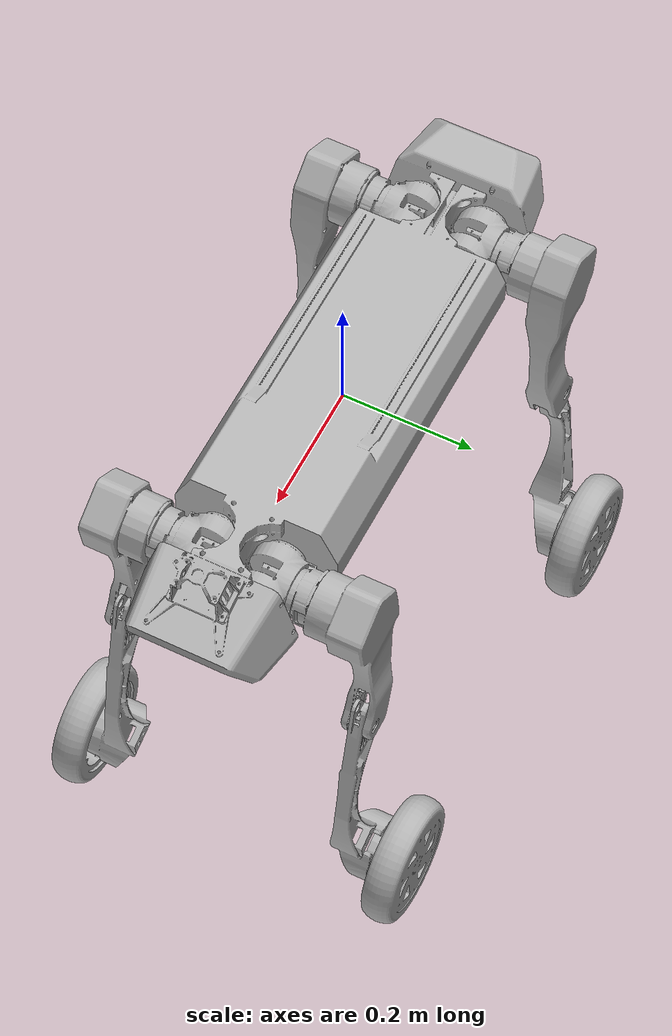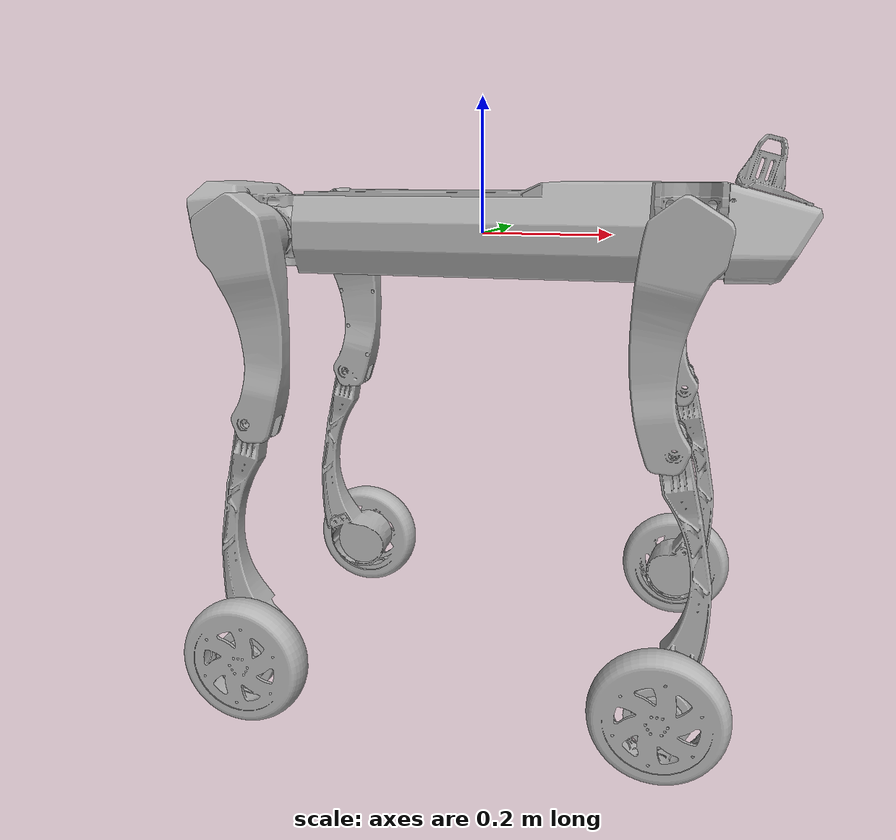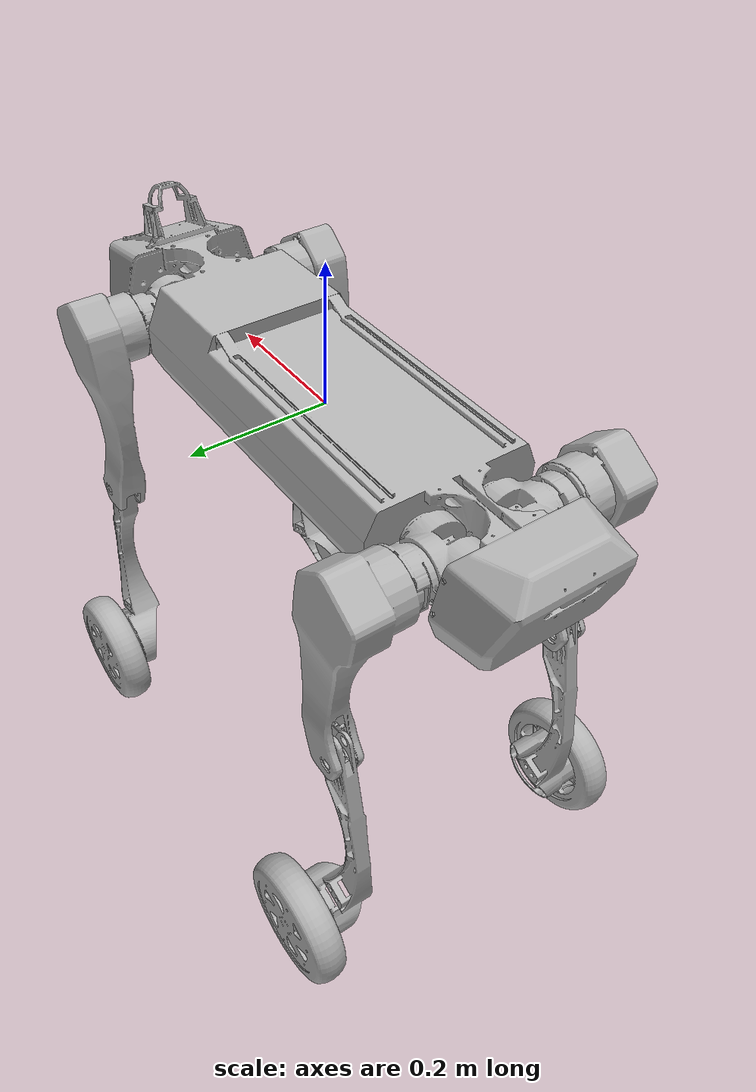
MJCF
<mujoco model="ly-mid-w-0915B">
  <compiler angle="radian" meshdir="meshes"/>

  <option iterations="50" timestep="0.002" solver="PGS" gravity="0 0 -9.81" />

  <default>
    <joint damping="0.2" armature="0.01" frictionloss="0.01" />
  </default>

  <asset>
    <mesh name="base_link" content_type="model/stl" file="base_link.STL"/>
    <mesh name="LF_ABAD_Link" content_type="model/stl" file="LF_ABAD_Link.STL"/>
    <mesh name="LF_THIGH_Link" content_type="model/stl" file="LF_THIGH_Link.STL"/>
    <mesh name="LF_SHANK_Link" content_type="model/stl" file="LF_SHANK_Link.STL"/>
    <mesh name="LF_FOOT_Link" content_type="model/stl" file="LF_FOOT_Link.STL"/>
    <mesh name="RF_ABAD_Link" content_type="model/stl" file="RF_ABAD_Link.STL"/>
    <mesh name="RF_THIGH_Link" content_type="model/stl" file="RF_THIGH_Link.STL"/>
    <mesh name="RF_SHANK_Link" content_type="model/stl" file="RF_SHANK_Link.STL"/>
    <mesh name="RF_FOOT_Link" content_type="model/stl" file="RF_FOOT_Link.STL"/>
    <mesh name="LH_ABAD_Link" content_type="model/stl" file="LH_ABAD_Link.STL"/>
    <mesh name="LH_THIGH_Link" content_type="model/stl" file="LH_THIGH_Link.STL"/>
    <mesh name="LH_SHANK_Link" content_type="model/stl" file="LH_SHANK_Link.STL"/>
    <mesh name="LH_FOOT_Link" content_type="model/stl" file="LH_FOOT_Link.STL"/>
    <mesh name="RH_ABAD_Link" content_type="model/stl" file="RH_ABAD_Link.STL"/>
    <mesh name="RH_THIGH_Link" content_type="model/stl" file="RH_THIGH_Link.STL"/>
    <mesh name="RH_SHANK_Link" content_type="model/stl" file="RH_SHANK_Link.STL"/>
    <mesh name="RH_FOOT_Link" content_type="model/stl" file="RH_FOOT_Link.STL"/>
  </asset>

  <worldbody>
    <light pos="0 0 1.5" dir="0 0 -1" directional="true"/>
    <body name="base">
      <inertial pos="0.00771202 -2.38069e-06 0.00294617" quat="1.00163e-05 0.70184 1.85912e-05 0.712335" mass="21.5552" diaginertia="0.962219 0.890231 0.122532"/>
      <joint name="floating_base_joint" type="free"/>
      <geom type="mesh" contype="0" conaffinity="0" group="1" density="0" rgba="0.698039 0.698039 0.698039 1" mesh="base_link"/>
      <geom type="mesh" rgba="0.698039 0.698039 0.698039 1" mesh="base_link"/>
      <geom size="0.0005 0.0005 0.0005" pos="0.0043 -0.02 0.0414" type="box" contype="0" conaffinity="0" group="1" density="0"/>
      <geom size="0.0005 0.0005 0.0005" pos="0.0043 -0.02 0.0414" type="box"/>
      <body name="LF_hip" pos="0.3154 0.05 0">
        <inertial pos="-1.38221e-06 0.0119998 -3.78509e-06" quat="-0.000589927 0.707109 -0.000527551 0.707104" mass="0.778654" diaginertia="0.00121131 0.000960298 0.00087971"/>
        <joint name="LF_HAA" pos="0 0 0" axis="1 0 0" range="-1.57 1.57" actuatorfrcrange="-40 40"/>
        <geom type="mesh" contype="0" conaffinity="0" group="1" density="0" rgba="0.698039 0.698039 0.698039 1" mesh="LF_ABAD_Link"/>
        <body name="LF_thigh" pos="0 0.1388 0">
          <inertial pos="-0.00412085 -0.0352419 -0.029079" quat="0.875057 0.115204 -0.00185057 0.470105" mass="2.10667" diaginertia="0.0136968 0.013538 0.00268849"/>
          <joint name="LF_HFE" pos="0 0 0" axis="0 1 0" range="-1.04 4.18" actuatorfrcrange="-40 40"/>
          <geom type="mesh" contype="0" conaffinity="0" group="1" density="0" rgba="0.698039 0.698039 0.698039 1" mesh="LF_THIGH_Link"/>
          <body name="LF_calf" pos="0 0 -0.272">
            <inertial pos="0.00690866 0.0384609 -0.310503" quat="0.84516 0.0943631 -0.0225429 0.525635" mass="1.26483" diaginertia="0.0162686 0.0158352 0.00130706"/>
            <joint name="LF_KFE" pos="0 0 0" axis="0 1 0" range="-2.73 -0.74" actuatorfrcrange="-100 100"/>
            <geom type="mesh" contype="0" conaffinity="0" group="1" density="0" rgba="0.698039 0.698039 0.698039 1" mesh="LF_SHANK_Link"/>
            <geom type="mesh" rgba="0.698039 0.698039 0.698039 1" mesh="LF_SHANK_Link"/>
            <body name="LF_FOOT" pos="0 0.0889282 -0.365367" quat="1 -3.81917e-05 -5.98325e-10 1.56664e-05">
              <inertial pos="4.11893e-09 -0.016568 -6.73453e-10" quat="0.5 0.5 0.5 0.5" mass="0.750197" diaginertia="0.00508244 0.00268749 0.00268749"/>
              <joint name="LF_WHEEL" pos="0 0 0" axis="0 1 0" range="-17453.3 17453.3" actuatorfrcrange="-40 40"/>
              <geom type="mesh" contype="0" conaffinity="0" group="1" density="0" rgba="0.698039 0.698039 0.698039 1" mesh="LF_FOOT_Link"/>
              <geom type="mesh" rgba="0.698039 0.698039 0.698039 1" mesh="LF_FOOT_Link"/>
            </body>
          </body>
        </body>
      </body>
      <body name="RF_hip" pos="0.3154 -0.05 0">
        <inertial pos="-2.01943e-06 -0.0119999 -3.7868e-06" quat="0.000596564 0.707104 0.000520837 0.707109" mass="0.778648" diaginertia="0.00121131 0.000960297 0.000879709"/>
        <joint name="RF_HAA" pos="0 0 0" axis="1 0 0" range="-1.57 1.57" actuatorfrcrange="-40 40"/>
        <geom type="mesh" contype="0" conaffinity="0" group="1" density="0" rgba="0.698039 0.698039 0.698039 1" mesh="RF_ABAD_Link"/>
        <body name="RF_thigh" pos="0 -0.1388 0">
          <inertial pos="-0.00412079 0.0352397 -0.029084" quat="0.469884 -0.00183031 0.11521 0.875176" mass="2.10685" diaginertia="0.0136982 0.0135394 0.00268877"/>
          <joint name="RF_HFE" pos="0 0 0" axis="0 1 0" range="-1.04 4.18" actuatorfrcrange="-40 40"/>
          <geom type="mesh" contype="0" conaffinity="0" group="1" density="0" rgba="0.698039 0.698039 0.698039 1" mesh="RF_THIGH_Link"/>
          <body name="RF_calf" pos="0 0 -0.272">
            <inertial pos="0.00691056 -0.0384575 -0.310502" quat="0.525419 -0.0225167 0.0943718 0.845294" mass="1.26478" diaginertia="0.0162682 0.0158354 0.00130658"/>
            <joint name="RF_KFE" pos="0 0 0" axis="0 1 0" range="-2.73 -0.74" actuatorfrcrange="-100 100"/>
            <geom type="mesh" contype="0" conaffinity="0" group="1" density="0" rgba="0.698039 0.698039 0.698039 1" mesh="RF_SHANK_Link"/>
            <geom type="mesh" rgba="0.698039 0.698039 0.698039 1" mesh="RF_SHANK_Link"/>
            <body name="RF_FOOT" pos="0 -0.0889282 -0.365367" quat="1 3.81916e-05 -5.98329e-10 -1.56665e-05">
              <inertial pos="-4.11892e-09 0.016568 -6.73453e-10" quat="0.5 0.5 0.5 0.5" mass="0.750197" diaginertia="0.00508244 0.00268749 0.00268749"/>
              <joint name="RF_WHEEL" pos="0 0 0" axis="0 1 0" range="-17453.3 17453.3" actuatorfrcrange="-40 40"/>
              <geom type="mesh" contype="0" conaffinity="0" group="1" density="0" rgba="0.698039 0.698039 0.698039 1" mesh="RF_FOOT_Link"/>
              <geom type="mesh" rgba="0.698039 0.698039 0.698039 1" mesh="RF_FOOT_Link"/>
            </body>
          </body>
        </body>
      </body>
      <body name="LH_hip" pos="-0.3155 0.05 0">
        <inertial pos="-1.36846e-06 0.0119998 -3.78369e-06" quat="-0.000590709 0.707109 -0.000526824 0.707104" mass="0.778654" diaginertia="0.00121131 0.000960298 0.00087971"/>
        <joint name="LH_HAA" pos="0 0 0" axis="1 0 0" range="-1.57 1.57" actuatorfrcrange="-40 40"/>
        <geom type="mesh" contype="0" conaffinity="0" group="1" density="0" rgba="0.698039 0.698039 0.698039 1" mesh="LH_ABAD_Link"/>
        <body name="LH_thigh" pos="0 0.1388 0">
          <inertial pos="0.0041208 -0.0352397 -0.029084" quat="0.469884 0.00183043 -0.11521 0.875175" mass="2.10685" diaginertia="0.0136982 0.0135394 0.00268877"/>
          <joint name="LH_HFE" pos="0 0 0" axis="0 1 0" range="-4.18 1.04" actuatorfrcrange="-40 40"/>
          <geom type="mesh" contype="0" conaffinity="0" group="1" density="0" rgba="0.698039 0.698039 0.698039 1" mesh="LH_THIGH_Link"/>
          <body name="LH_calf" pos="0 0 -0.272">
            <inertial pos="-0.00690497 0.0384556 -0.310503" quat="0.525543 0.0225509 -0.0943693 0.845216" mass="1.26487" diaginertia="0.0162685 0.0158352 0.0013072"/>
            <joint name="LH_KFE" pos="0 0 0" axis="0 1 0" range="0.74 2.73" actuatorfrcrange="-100 100"/>
            <geom type="mesh" contype="0" conaffinity="0" group="1" density="0" rgba="0.698039 0.698039 0.698039 1" mesh="LH_SHANK_Link"/>
            <geom type="mesh" rgba="0.698039 0.698039 0.698039 1" mesh="LH_SHANK_Link"/>
            <body name="LH_FOOT" pos="0 0.0889282 -0.365367" quat="1 -3.81916e-05 5.98329e-10 -1.56665e-05">
              <inertial pos="4.11892e-09 -0.016568 -6.73454e-10" quat="0.5 0.5 0.5 0.5" mass="0.750197" diaginertia="0.00508244 0.00268749 0.00268749"/>
              <joint name="LH_WHEEL" pos="0 0 0" axis="0 1 0" range="-17453.3 17453.3" actuatorfrcrange="-40 40"/>
              <geom type="mesh" contype="0" conaffinity="0" group="1" density="0" rgba="0.698039 0.698039 0.698039 1" mesh="LH_FOOT_Link"/>
              <geom type="mesh" rgba="0.698039 0.698039 0.698039 1" mesh="LH_FOOT_Link"/>
            </body>
          </body>
        </body>
      </body>
      <body name="RH_hip" pos="-0.3155 -0.05 0">
        <inertial pos="-2.03304e-06 -0.0119999 -3.78531e-06" quat="0.000595832 0.707104 0.000521638 0.707109" mass="0.778648" diaginertia="0.00121131 0.000960297 0.000879709"/>
        <joint name="RH_HAA" pos="0 0 0" axis="1 0 0" range="-1.57 1.57" actuatorfrcrange="-40 40"/>
        <geom type="mesh" contype="0" conaffinity="0" group="1" density="0" rgba="0.698039 0.698039 0.698039 1" mesh="RH_ABAD_Link"/>
        <body name="RH_thigh" pos="0 -0.1388 0">
          <inertial pos="0.00412085 0.0352419 -0.0290789" quat="0.875062 -0.115203 0.00184915 0.470097" mass="2.10668" diaginertia="0.0136968 0.0135381 0.0026885"/>
          <joint name="RH_HFE" pos="0 0 0" axis="0 1 0" range="-4.18 1.04" actuatorfrcrange="-40 40"/>
          <geom type="mesh" contype="0" conaffinity="0" group="1" density="0" rgba="0.698039 0.698039 0.698039 1" mesh="RH_THIGH_Link"/>
          <body name="RH_calf" pos="0 0 -0.272">
            <inertial pos="-0.00690864 -0.0384609 -0.310502" quat="0.845161 -0.0943635 0.0225414 0.525633" mass="1.26483" diaginertia="0.0162686 0.0158352 0.00130705"/>
            <joint name="RH_KFE" pos="0 0 0" axis="0 1 0" range="0.74 2.73" actuatorfrcrange="-100 100"/>
            <geom type="mesh" contype="0" conaffinity="0" group="1" density="0" rgba="0.698039 0.698039 0.698039 1" mesh="RH_SHANK_Link"/>
            <geom type="mesh" rgba="0.698039 0.698039 0.698039 1" mesh="RH_SHANK_Link"/>
            <body name="RH_FOOT" pos="0 -0.0889282 -0.365367" quat="1 3.81917e-05 5.98325e-10 1.56664e-05">
              <inertial pos="-4.11893e-09 0.016568 -6.73453e-10" quat="0.5 0.5 0.5 0.5" mass="0.750197" diaginertia="0.00508244 0.00268749 0.00268749"/>
              <joint name="RH_WHEEL" pos="0 0 0" axis="0 1 0" range="-17453.3 17453.3" actuatorfrcrange="-40 40"/>
              <geom type="mesh" contype="0" conaffinity="0" group="1" density="0" rgba="0.698039 0.698039 0.698039 1" mesh="RH_FOOT_Link"/>
              <geom type="mesh" rgba="0.698039 0.698039 0.698039 1" mesh="RH_FOOT_Link"/>
            </body>
          </body>
        </body>
      </body>
    </body>
  </worldbody>

  <actuator>
    <motor name="RF_HAA" joint="RF_HAA" ctrlrange="-40 40"/>
    <motor name="RF_HFE" joint="RF_HFE" ctrlrange="-40 40"/>
    <motor name="RF_KFE" joint="RF_KFE" ctrlrange="-100 100"/>
    <motor name="RF_WHEEL" joint="RF_WHEEL" ctrlrange="-40 40"/>

    <motor name="LF_HAA" joint="LF_HAA" ctrlrange="-40 40"/>
    <motor name="LF_HFE" joint="LF_HFE" ctrlrange="-40 40"/>
    <motor name="LF_KFE" joint="LF_KFE" ctrlrange="-100 100"/>
    <motor name="LF_WHEEL" joint="LF_WHEEL" ctrlrange="-40 40"/>

    <motor name="RH_HAA" joint="RH_HAA" ctrlrange="-40 40"/>
    <motor name="RH_HFE" joint="RH_HFE" ctrlrange="-40 40"/>
    <motor name="RH_KFE" joint="RH_KFE" ctrlrange="-100 100"/>
    <motor name="RH_WHEEL" joint="RH_WHEEL" ctrlrange="-40 40"/>

    <motor name="LH_HAA" joint="LH_HAA" ctrlrange="-40 40"/>
    <motor name="LH_HFE" joint="LH_HFE" ctrlrange="-40 40"/>
    <motor name="LH_KFE" joint="LH_KFE" ctrlrange="-100 100"/>
    <motor name="LH_WHEEL" joint="LH_WHEEL" ctrlrange="-40 40"/>

  </actuator>
</mujoco>
